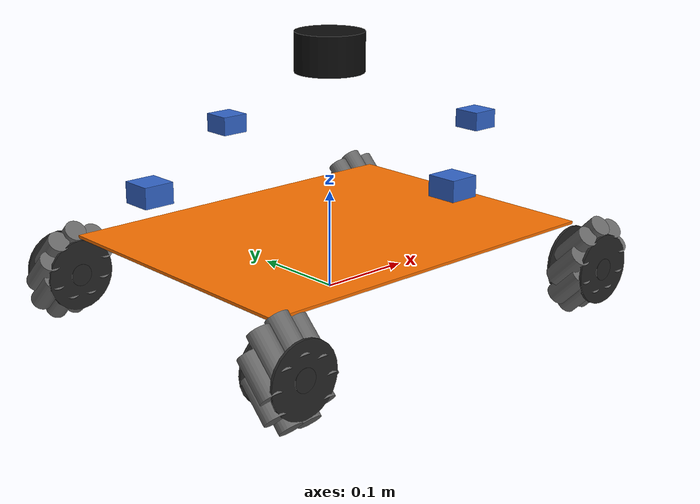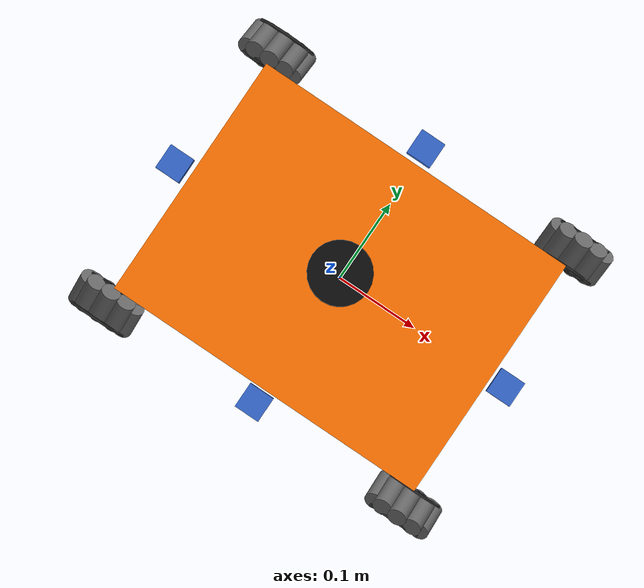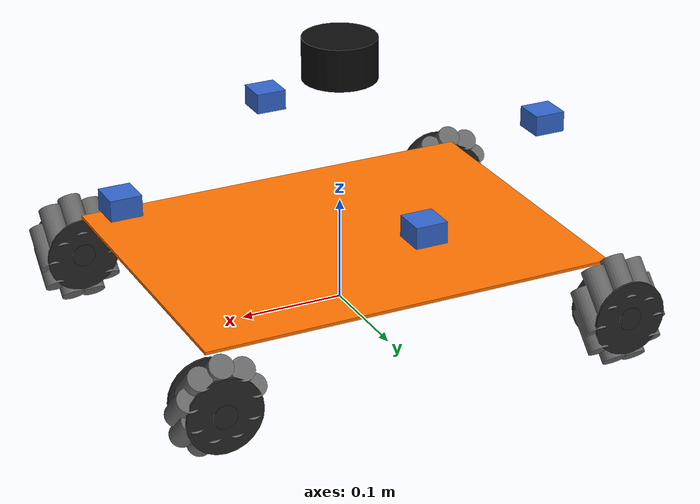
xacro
<?xml version="1.0"?>
<robot name="rccar_sim" xmlns:xacro="http://www.ros.org/wiki/xacro">

  <!-- 1. 기반 파일 인클루드 -->
  <xacro:include filename="rccar.urdf.xacro"/>

  <!-- ====================================================
       2. Gazebo 링크 색상 & 마찰 매크로
       ==================================================== -->
  <xacro:macro name="gz_body_props" params="link_name color mu1 mu2">
    <gazebo reference="${link_name}">
      <material>${color}</material>
      <mu1>${mu1}</mu1>
      <mu2>${mu2}</mu2>
      <selfCollide>false</selfCollide>
    </gazebo>
  </xacro:macro>

  <xacro:gz_body_props link_name="base_link"
                        color="Gazebo/Orange"
                        mu1="0.5" mu2="0.5"/>
  <xacro:gz_body_props link_name="front_left_wheel"
                        color="Gazebo/DarkGrey"
                        mu1="0.3" mu2="0.1"/>
  <xacro:gz_body_props link_name="front_right_wheel"
                        color="Gazebo/DarkGrey"
                        mu1="0.3" mu2="0.1"/>
  <xacro:gz_body_props link_name="rear_left_wheel"
                        color="Gazebo/DarkGrey"
                        mu1="0.3" mu2="0.1"/>
  <xacro:gz_body_props link_name="rear_right_wheel"
                        color="Gazebo/DarkGrey"
                        mu1="0.3" mu2="0.1"/>

  <!-- LiDAR 링크 색상 -->
  <gazebo reference="lidar_link">
    <material>Gazebo/Black</material>
  </gazebo>

  <!-- ====================================================
       3. Joint State Publisher 플러그인
       ==================================================== -->
  <gazebo>
    <plugin name="gazebo_ros_joint_state_publisher"
            filename="libgazebo_ros_joint_state_publisher.so">
      <ros>
        <remapping>~/out:=joint_states</remapping>
      </ros>
      <update_rate>50</update_rate>
      <joint_name>front_left_wheel_joint</joint_name>
      <joint_name>front_right_wheel_joint</joint_name>
      <joint_name>rear_left_wheel_joint</joint_name>
      <joint_name>rear_right_wheel_joint</joint_name>
    </plugin>
  </gazebo>

  <!-- ====================================================
       4. 구동 플러그인 — Planar Move
       ==================================================== -->
  <gazebo>
    <plugin name="gazebo_ros_planar_move"
            filename="libgazebo_ros_planar_move.so">
      <ros>
        <remapping>cmd_vel:=cmd_vel</remapping>
        <remapping>odom:=odom</remapping>
      </ros>
      <update_rate>50</update_rate>
      <odometry_frame>odom</odometry_frame>
      <robot_base_frame>base_footprint</robot_base_frame>
      <covariance_x>0.002</covariance_x>
      <covariance_y>0.002</covariance_y>
      <covariance_yaw>0.01</covariance_yaw>
      <publish_odom>true</publish_odom>
      <publish_odom_tf>true</publish_odom_tf>
    </plugin>
  </gazebo>

  <!-- ====================================================
       5. 4방향 카메라 플러그인 매크로
       ==================================================== -->
  <xacro:macro name="gz_camera" params="name">
    <gazebo reference="camera_${name}">
      <sensor name="camera_${name}_sensor" type="camera">
        <always_on>true</always_on>
        <update_rate>30.0</update_rate>
        <visualize>false</visualize>
        <camera name="camera_${name}">
          <horizontal_fov>1.5708</horizontal_fov>
          <image>
            <width>640</width>
            <height>480</height>
            <format>R8G8B8</format>
          </image>
          <clip>
            <near>0.02</near>
            <far>20.0</far>
          </clip>
          <distortion>
            <k1>0.0</k1><k2>0.0</k2><k3>0.0</k3>
            <p1>0.0</p1><p2>0.0</p2>
            <center>0.5 0.5</center>
          </distortion>
        </camera>
        <plugin name="camera_${name}_driver"
                filename="libgazebo_ros_camera.so">
          <ros>
            <remapping>image_raw:=camera/${name}/image_raw</remapping>
            <remapping>camera_info:=camera/${name}/camera_info</remapping>
          </ros>
          <camera_name>camera_${name}</camera_name>
          <frame_name>camera_${name}_optical</frame_name>
        </plugin>
      </sensor>
    </gazebo>
  </xacro:macro>

  <xacro:gz_camera name="front"/>
  <xacro:gz_camera name="rear"/>
  <xacro:gz_camera name="left"/>
  <xacro:gz_camera name="right"/>

  <!-- ====================================================
       6. IMU 센서 플러그인
       ==================================================== -->
  <gazebo reference="imu_link">
    <sensor name="imu_sensor" type="imu">
      <always_on>true</always_on>
      <update_rate>200</update_rate>
      <visualize>false</visualize>
      <imu>
        <linear_acceleration>
          <x>
            <noise type="gaussian">
              <mean>0.0</mean><stddev>0.017</stddev>
              <bias_mean>0.1</bias_mean><bias_stddev>0.001</bias_stddev>
            </noise>
          </x>
          <y>
            <noise type="gaussian">
              <mean>0.0</mean><stddev>0.017</stddev>
              <bias_mean>0.1</bias_mean><bias_stddev>0.001</bias_stddev>
            </noise>
          </y>
          <z>
            <noise type="gaussian">
              <mean>0.0</mean><stddev>0.017</stddev>
              <bias_mean>0.1</bias_mean><bias_stddev>0.001</bias_stddev>
            </noise>
          </z>
        </linear_acceleration>
        <angular_velocity>
          <x>
            <noise type="gaussian">
              <mean>0.0</mean><stddev>0.005</stddev>
              <bias_mean>0.0</bias_mean><bias_stddev>0.0005</bias_stddev>
            </noise>
          </x>
          <y>
            <noise type="gaussian">
              <mean>0.0</mean><stddev>0.005</stddev>
              <bias_mean>0.0</bias_mean><bias_stddev>0.0005</bias_stddev>
            </noise>
          </y>
          <z>
            <noise type="gaussian">
              <mean>0.0</mean><stddev>0.005</stddev>
              <bias_mean>0.0</bias_mean><bias_stddev>0.0005</bias_stddev>
            </noise>
          </z>
        </angular_velocity>
      </imu>
      <plugin name="imu_driver"
              filename="libgazebo_ros_imu_sensor.so">
        <ros>
          <remapping>~/out:=imu/data</remapping>
        </ros>
        <frame_name>imu_link</frame_name>
        <initial_orientation_as_reference>false</initial_orientation_as_reference>
      </plugin>
    </sensor>
  </gazebo>

  <gazebo reference="lidar_link">
    <sensor name="lidar_sensor" type="ray">
      <always_on>true</always_on>
      <update_rate>10</update_rate>
      <visualize>false</visualize>

      <ray>
        <scan>
          <horizontal>
            <samples>360</samples>
            <resolution>1</resolution>
            <min_angle>-3.14159265</min_angle>
            <max_angle> 3.14159265</max_angle>
          </horizontal>
        </scan>
        <range>
          <min>0.12</min>
          <max>12.0</max>
          <resolution>0.01</resolution>
        </range>
        <noise>
          <type>gaussian</type>
          <mean>0.0</mean>
          <stddev>0.01</stddev>
        </noise>
      </ray>

      <plugin name="lidar_driver"
              filename="libgazebo_ros_ray_sensor.so">
        <ros>
          <remapping>~/out:=scan</remapping>
        </ros>
        <output_type>sensor_msgs/LaserScan</output_type>
        <frame_name>lidar_link</frame_name>
      </plugin>
    </sensor>
  </gazebo>

</robot>

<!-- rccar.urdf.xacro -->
<robot name="rccar" xmlns:xacro="http://www.ros.org/wiki/xacro">

  <!-- body dimensions -->
  <xacro:property name="body_l"  value="0.400"/>
  <xacro:property name="body_w"  value="0.300"/>
  <xacro:property name="body_h"  value="0.003"/>

  <!-- wheel: 80mm mecanum (radius 40mm) -->
  <xacro:property name="wheel_r" value="0.040"/>
  <xacro:property name="wheel_w" value="0.040"/>

  <!-- wb: front-rear wheel center distance -->
  <!-- tw: left-right wheel center distance -->
  <xacro:property name="wb"      value="0.400"/>
  <xacro:property name="tw"      value="0.340"/>

  <!-- camera mount -->
  <xacro:property name="cam_h"   value="0.080"/>
  <xacro:property name="cam_of"  value="0.015"/>

  <!-- ▶ LiDAR: 몸체 상단으로부터 18cm 위 (실물 기준)
       joint origin z = body_h/2 + 0.180
       → base_link 기준 +0.1815 m
       → 지면 기준 wheel_r + body_h/2 + 0.180 = 0.040 + 0.0015 + 0.180 = 0.2215 m -->
  <xacro:property name="lidar_mount_z" value="0.180"/>

  <!-- roller params -->
  <xacro:property name="roller_r"     value="${wheel_r * 0.28}"/>
  <xacro:property name="roller_l"     value="${wheel_w * 1.05}"/>
  <xacro:property name="roller_pos_r" value="${wheel_r * 0.76}"/>

  <!-- materials -->
  <material name="dark_grey"><color rgba="0.15 0.15 0.15 1.0"/></material>
  <material name="mid_grey"> <color rgba="0.40 0.40 0.40 1.0"/></material>
  <material name="orange">   <color rgba="1.0  0.45 0.0  1.0"/></material>
  <material name="blue">     <color rgba="0.2  0.4  0.8  1.0"/></material>
  <material name="black">    <color rgba="0.05 0.05 0.05 1.0"/></material>

  <!-- mecanum roller visual -->
  <xacro:macro name="mecanum_roller" params="phi roller_sign">
    <visual>
      <geometry><cylinder radius="${roller_r}" length="${roller_l}"/></geometry>
      <material name="mid_grey"/>
      <origin xyz="${roller_pos_r * sin(phi)} 0 ${roller_pos_r * cos(phi)}"
              rpy="${-roller_sign * pi/4} 0 0"/>
    </visual>
  </xacro:macro>

  <!-- mecanum wheel macro -->
  <xacro:macro name="wheel" params="name x y roller_sign">
    <link name="${name}_wheel">
      <visual>
        <geometry><cylinder radius="${wheel_r * 0.28}" length="${wheel_w * 1.1}"/></geometry>
        <material name="dark_grey"/>
        <origin xyz="0 0 0" rpy="${pi/2} 0 0"/>
      </visual>
      <visual>
        <geometry><cylinder radius="${wheel_r * 0.90}" length="${wheel_w * 0.07}"/></geometry>
        <material name="dark_grey"/>
        <origin xyz="0 ${wheel_w * 0.50} 0" rpy="${pi/2} 0 0"/>
      </visual>
      <visual>
        <geometry><cylinder radius="${wheel_r * 0.90}" length="${wheel_w * 0.07}"/></geometry>
        <material name="dark_grey"/>
        <origin xyz="0 ${-wheel_w * 0.50} 0" rpy="${pi/2} 0 0"/>
      </visual>
      <xacro:mecanum_roller phi="${0}"        roller_sign="${roller_sign}"/>
      <xacro:mecanum_roller phi="${2*pi/9}"   roller_sign="${roller_sign}"/>
      <xacro:mecanum_roller phi="${4*pi/9}"   roller_sign="${roller_sign}"/>
      <xacro:mecanum_roller phi="${6*pi/9}"   roller_sign="${roller_sign}"/>
      <xacro:mecanum_roller phi="${8*pi/9}"   roller_sign="${roller_sign}"/>
      <xacro:mecanum_roller phi="${10*pi/9}"  roller_sign="${roller_sign}"/>
      <xacro:mecanum_roller phi="${12*pi/9}"  roller_sign="${roller_sign}"/>
      <xacro:mecanum_roller phi="${14*pi/9}"  roller_sign="${roller_sign}"/>
      <xacro:mecanum_roller phi="${16*pi/9}"  roller_sign="${roller_sign}"/>
      <collision>
        <geometry><cylinder radius="${wheel_r}" length="${wheel_w}"/></geometry>
        <origin xyz="0 0 0" rpy="${pi/2} 0 0"/>
      </collision>
      <inertial>
        <mass value="0.15"/>
        <inertia ixx="0.0002" ixy="0" ixz="0" iyy="0.0002" iyz="0" izz="0.0003"/>
      </inertial>
    </link>
    <joint name="${name}_wheel_joint" type="continuous">
      <parent link="base_link"/>
      <child  link="${name}_wheel"/>
      <origin xyz="${x} ${y} ${-wheel_r}" rpy="0 0 0"/>
      <axis xyz="0 1 0"/>
    </joint>
  </xacro:macro>

  <!-- camera frame macro -->
  <xacro:macro name="camera_frame" params="name x y yaw">
    <link name="camera_${name}">
      <visual>
        <geometry><box size="0.030 0.030 0.020"/></geometry>
        <material name="blue"/>
      </visual>
    </link>
    <joint name="camera_${name}_joint" type="fixed">
      <parent link="base_link"/>
      <child  link="camera_${name}"/>
      <origin xyz="${x} ${y} ${body_h/2 + cam_h}" rpy="0 0 ${yaw}"/>
    </joint>
    <link name="camera_${name}_optical"/>
    <joint name="camera_${name}_optical_joint" type="fixed">
      <parent link="camera_${name}"/>
      <child  link="camera_${name}_optical"/>
      <origin xyz="0 0 0" rpy="${-pi/2} 0 ${-pi/2}"/>
    </joint>
  </xacro:macro>

  <!-- base_footprint -->
  <link name="base_footprint"/>
  <joint name="base_footprint_joint" type="fixed">
    <parent link="base_footprint"/>
    <child  link="base_link"/>
    <origin xyz="0 0 ${wheel_r + 0.02}" rpy="0 0 0"/>
  </joint>

  <!-- body -->
  <link name="base_link">
    <visual>
      <geometry><box size="${body_l} ${body_w} ${body_h}"/></geometry>
      <material name="orange"/>
    </visual>
    <collision>
      <geometry><box size="${body_l} ${body_w} ${body_h}"/></geometry>
    </collision>
    <inertial>
      <mass value="1.8"/>
      <inertia ixx="0.012" ixy="0" ixz="0" iyy="0.008" iyz="0" izz="0.018"/>
    </inertial>
  </link>

  <!-- 4 mecanum wheels -->
  <xacro:wheel name="front_left"  x="${wb/2}"  y="${tw/2}"  roller_sign="1"/>
  <xacro:wheel name="front_right" x="${wb/2}"  y="${-tw/2}" roller_sign="-1"/>
  <xacro:wheel name="rear_left"   x="${-wb/2}" y="${tw/2}"  roller_sign="-1"/>
  <xacro:wheel name="rear_right"  x="${-wb/2}" y="${-tw/2}" roller_sign="1"/>

  <!-- cameras at 4 sides -->
  <xacro:camera_frame name="front" x="${body_l/2 + cam_of}"   y="0"                     yaw="0"/>
  <xacro:camera_frame name="rear"  x="${-body_l/2 - cam_of}"  y="0"                     yaw="${pi}"/>
  <xacro:camera_frame name="left"  x="0"                      y="${body_w/2 + cam_of}"  yaw="${pi/2}"/>
  <xacro:camera_frame name="right" x="0"                      y="${-body_w/2 - cam_of}" yaw="${-pi/2}"/>

  <!-- IMU -->
  <link name="imu_link"/>
  <joint name="imu_joint" type="fixed">
    <parent link="base_link"/>
    <child  link="imu_link"/>
    <origin xyz="0 0 0" rpy="0 0 0"/>
  </joint>

  <link name="lidar_link">
    <visual>
      <!-- RPLIDAR A1/A2 외형 모사: φ70mm × h40mm -->
      <geometry>
        <cylinder radius="0.035" length="0.040"/>
      </geometry>
      <material name="black"/>
      <origin xyz="0 0 0" rpy="0 0 0"/>
    </visual>
    <collision>
      <geometry>
        <cylinder radius="0.035" length="0.040"/>
      </geometry>
      <origin xyz="0 0 0" rpy="0 0 0"/>
    </collision>
    <inertial>
      <mass value="0.17"/>
      <!-- I_xx = I_yy = 1/12 * m * (3r² + h²), I_zz = 1/2 * m * r² -->
      <inertia ixx="0.000057" ixy="0" ixz="0"
               iyy="0.000057" iyz="0"
               izz="0.000104"/>
    </inertial>
  </link>

  <joint name="lidar_joint" type="fixed">
    <parent link="base_link"/>
    <child  link="lidar_link"/>
    <!-- 몸체 상단(body_h/2)에서 정확히 18cm(lidar_mount_z) 위 -->
    <origin xyz="0 0 ${body_h/2 + lidar_mount_z}" rpy="0 0 0"/>
  </joint>

</robot>
